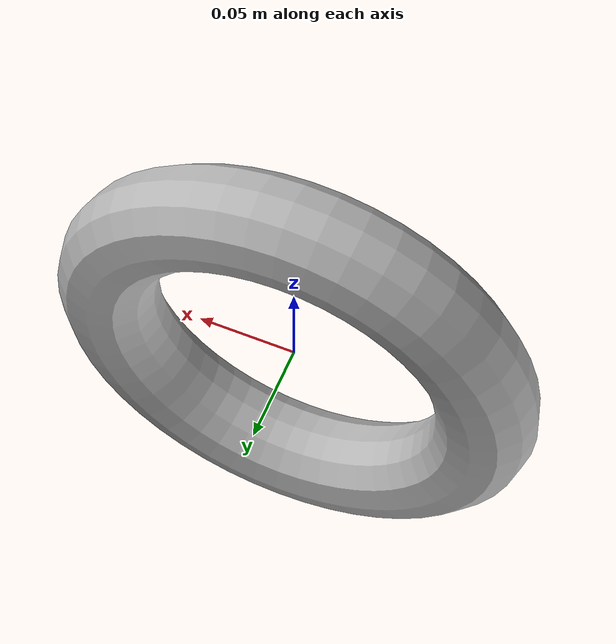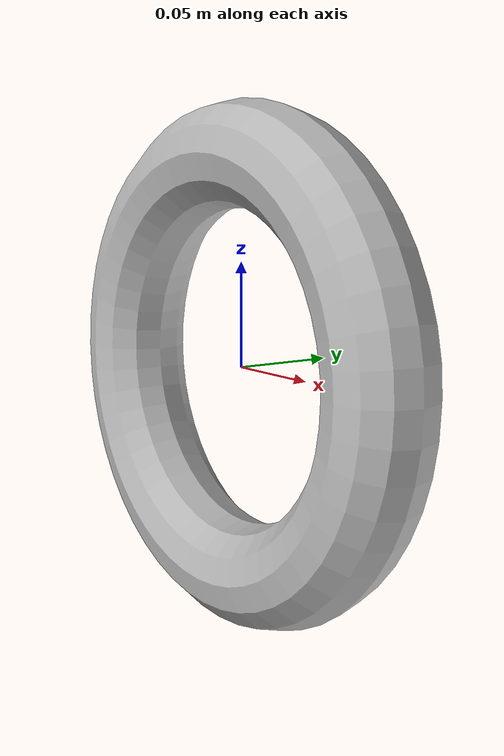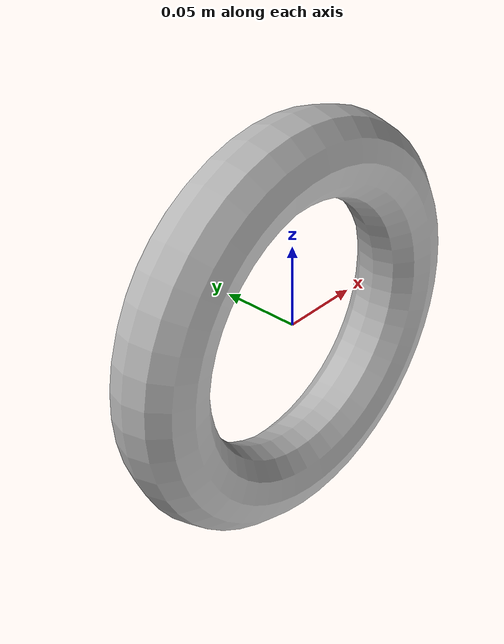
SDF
<?xml version='1.0' encoding='utf-8'?>
<sdf version="1.7">
  <model name="geometry_mesh_obj">
    <link name="link">
      <visual name="link_visual">
        <geometry>
          <mesh>
            <uri>model://geometry_mesh_obj/torus.obj</uri>
            <scale>0.1 0.1 0.1</scale>
          </mesh>
        </geometry>
      </visual>
      <collision name="link_collision">
        <geometry>
          <mesh>
            <uri>model://geometry_mesh_obj/torus.obj</uri>
            <scale>0.1 0.1 0.1</scale>
          </mesh>
        </geometry>
      </collision>
      <inertial>
        <mass>1.23</mass>
        <inertia>
          <ixx>0.0205</ixx>
          <ixy>0</ixy>
          <ixz>0</ixz>
          <iyy>0.017425</iyy>
          <iyz>0</iyz>
          <izz>0.005125</izz>
        </inertia>
      </inertial>
    </link>
  </model>
</sdf>
